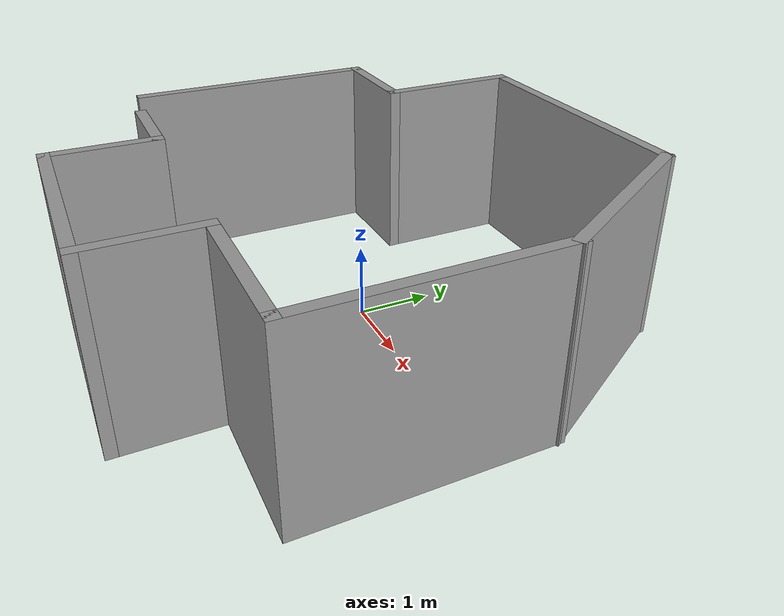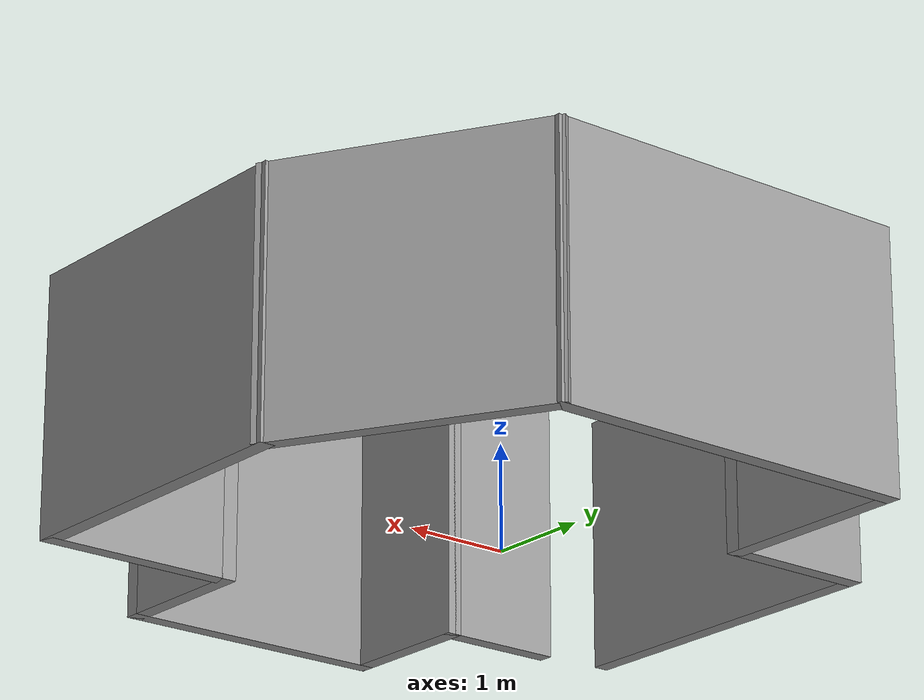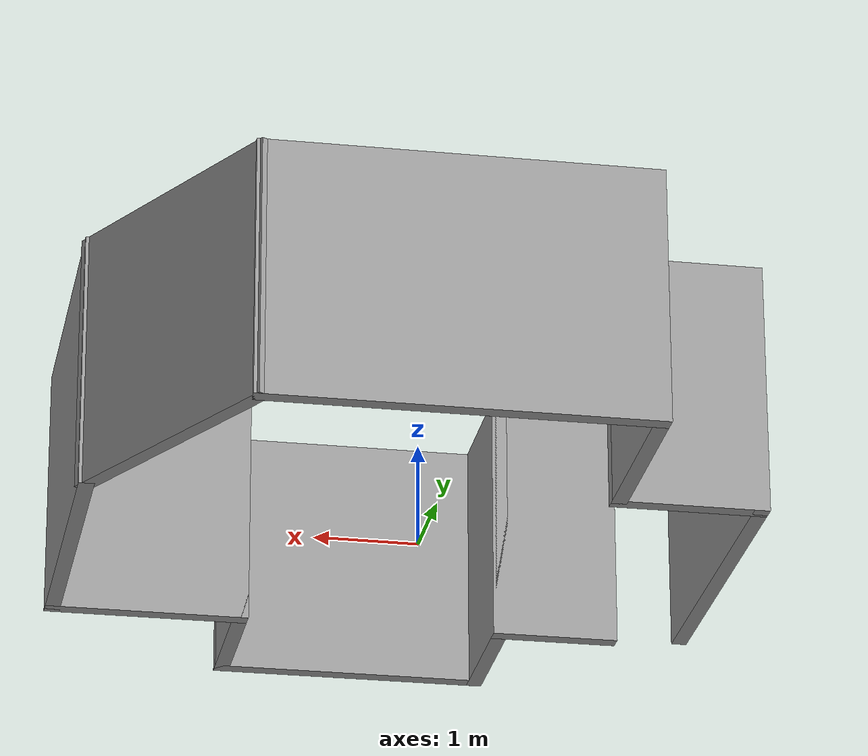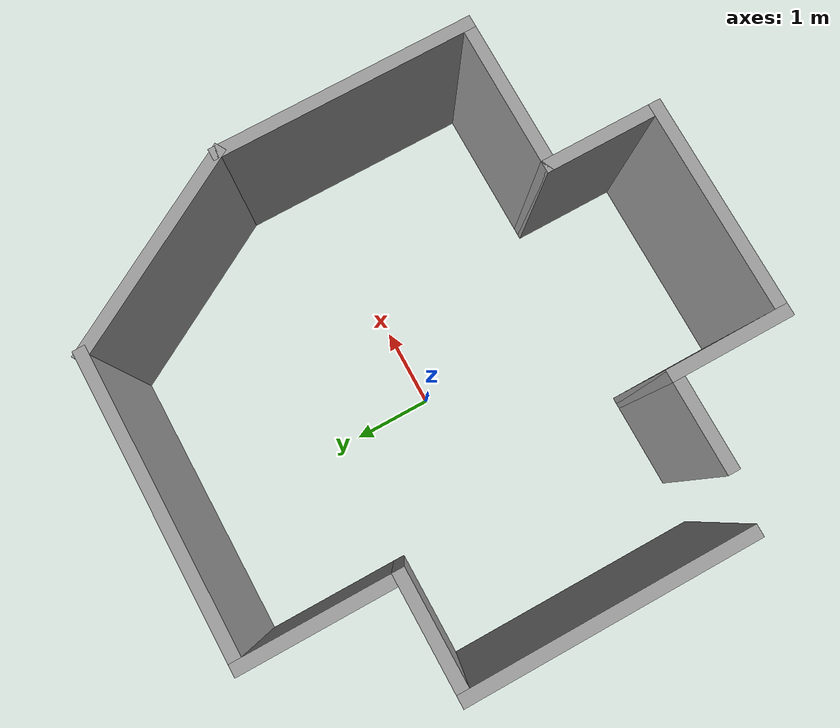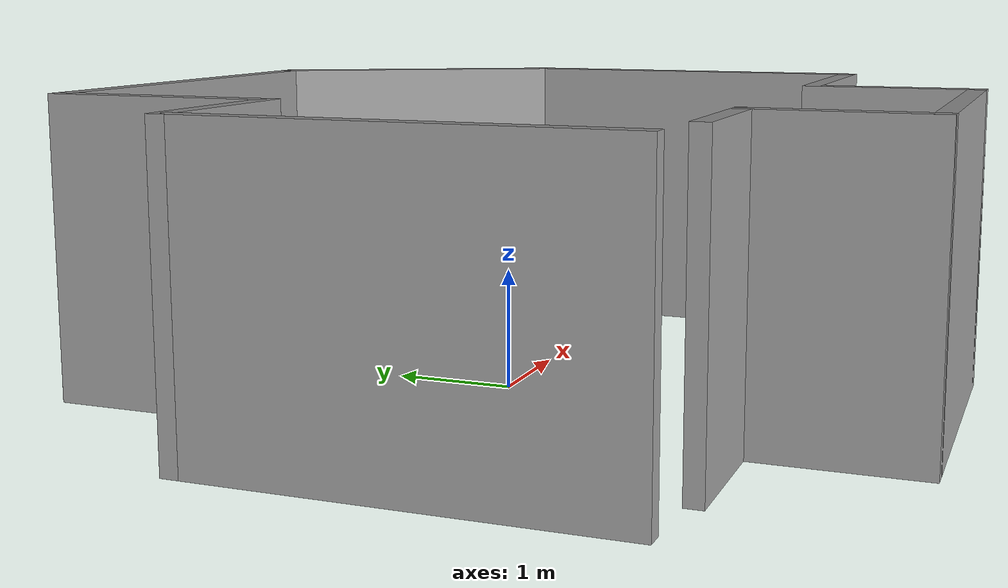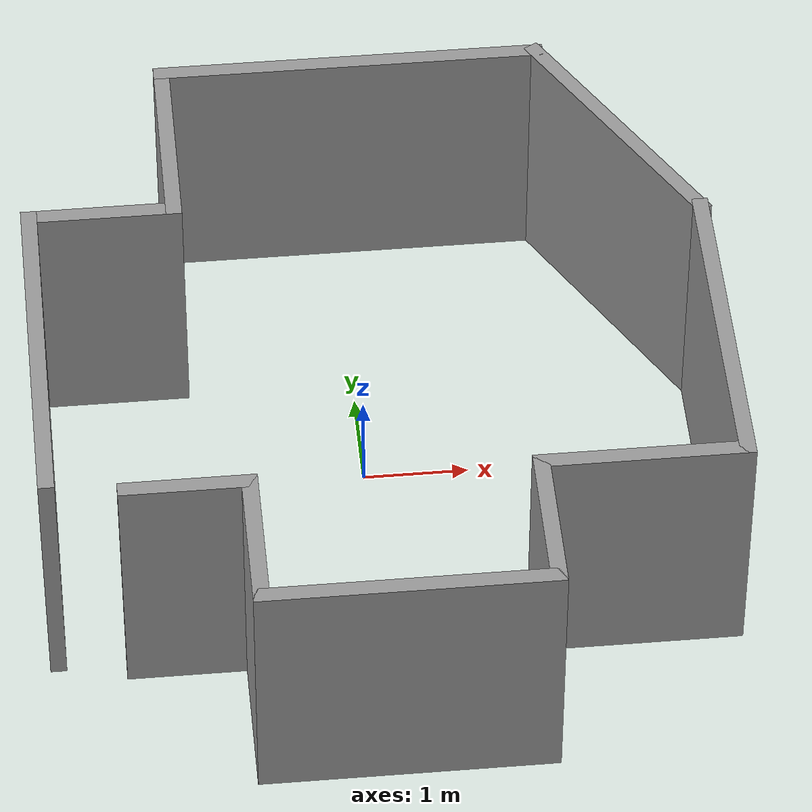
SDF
<?xml version='1.0'?>
<sdf version='1.6'>
  <model name='simple_arena'>
    <pose frame=''>0.129312 -0.214099 0 0 -0 0</pose>
    <link name='Wall_1'>
      <collision name='Wall_1_Collision'>
        <geometry>
          <box>
            <size>1.25 0.15 2.5</size>
          </box>
        </geometry>
        <pose frame=''>0 0 1.25 0 -0 0</pose>
      </collision>
      <visual name='Wall_1_Visual'>
        <pose frame=''>0 0 1.25 0 -0 0</pose>
        <geometry>
          <box>
            <size>1.25 0.15 2.5</size>
          </box>
        </geometry>
        <material>
          <script>
            <uri>file://media/materials/scripts/gazebo.material</uri>
            <name>Gazebo/Grey</name>
          </script>
          <ambient>1 1 1 1</ambient>
        </material>
        <meta>
          <layer>0</layer>
        </meta>
      </visual>
      <pose frame=''>-1.88873 -2.01456 0 0 -0 0</pose>
    </link>
    <link name='Wall_10'>
      <collision name='Wall_10_Collision'>
        <geometry>
          <box>
            <size>1.5 0.15 2.5</size>
          </box>
        </geometry>
        <pose frame=''>0 0 1.25 0 -0 0</pose>
      </collision>
      <visual name='Wall_10_Visual'>
        <pose frame=''>0 0 1.25 0 -0 0</pose>
        <geometry>
          <box>
            <size>1.5 0.15 2.5</size>
          </box>
        </geometry>
        <material>
          <script>
            <uri>file://media/materials/scripts/gazebo.material</uri>
            <name>Gazebo/Grey</name>
          </script>
          <ambient>1 1 1 1</ambient>
        </material>
        <meta>
          <layer>0</layer>
        </meta>
      </visual>
      <pose frame=''>-2.46373 1.48711 0 0 -0 3.14159</pose>
    </link>
    <link name='Wall_11'>
      <collision name='Wall_11_Collision'>
        <geometry>
          <box>
            <size>3.5 0.15 2.5</size>
          </box>
        </geometry>
        <pose frame=''>0 0 1.25 0 -0 0</pose>
      </collision>
      <visual name='Wall_11_Visual'>
        <pose frame=''>0 0 1.25 0 -0 0</pose>
        <geometry>
          <box>
            <size>3.5 0.15 2.5</size>
          </box>
        </geometry>
        <material>
          <script>
            <uri>file://media/materials/scripts/gazebo.material</uri>
            <name>Gazebo/Grey</name>
          </script>
          <ambient>1 1 1 1</ambient>
        </material>
        <meta>
          <layer>0</layer>
        </meta>
      </visual>
      <pose frame=''>-3.13873 -0.187893 0 0 -0 -1.5708</pose>
    </link>
    <link name='Wall_2'>
      <collision name='Wall_2_Collision'>
        <geometry>
          <box>
            <size>1.5 0.15 2.5</size>
          </box>
        </geometry>
        <pose frame=''>0 0 1.25 0 -0 0</pose>
      </collision>
      <visual name='Wall_2_Visual'>
        <pose frame=''>0 0 1.25 0 -0 0</pose>
        <geometry>
          <box>
            <size>1.5 0.15 2.5</size>
          </box>
        </geometry>
        <material>
          <script>
            <uri>file://media/materials/scripts/gazebo.material</uri>
            <name>Gazebo/Grey</name>
          </script>
          <ambient>1 1 1 1</ambient>
        </material>
        <meta>
          <layer>0</layer>
        </meta>
      </visual>
      <pose frame=''>-1.33873 -2.68956 0 0 -0 -1.5708</pose>
    </link>
    <link name='Wall_3'>
      <collision name='Wall_3_Collision'>
        <geometry>
          <box>
            <size>2.75 0.15 2.5</size>
          </box>
        </geometry>
        <pose frame=''>0 0 1.25 0 -0 0</pose>
      </collision>
      <visual name='Wall_3_Visual'>
        <pose frame=''>0 0 1.25 0 -0 0</pose>
        <geometry>
          <box>
            <size>2.75 0.15 2.5</size>
          </box>
        </geometry>
        <material>
          <script>
            <uri>file://media/materials/scripts/gazebo.material</uri>
            <name>Gazebo/Grey</name>
          </script>
          <ambient>1 1 1 1</ambient>
        </material>
        <meta>
          <layer>0</layer>
        </meta>
      </visual>
      <pose frame=''>-0.038726 -3.36456 0 0 -0 0</pose>
    </link>
    <link name='Wall_4'>
      <collision name='Wall_4_Collision'>
        <geometry>
          <box>
            <size>1.5 0.15 2.5</size>
          </box>
        </geometry>
        <pose frame=''>0 0 1.25 0 -0 0</pose>
      </collision>
      <visual name='Wall_4_Visual'>
        <pose frame=''>0 0 1.25 0 -0 0</pose>
        <geometry>
          <box>
            <size>1.5 0.15 2.5</size>
          </box>
        </geometry>
        <material>
          <script>
            <uri>file://media/materials/scripts/gazebo.material</uri>
            <name>Gazebo/Grey</name>
          </script>
          <ambient>1 1 1 1</ambient>
        </material>
        <meta>
          <layer>0</layer>
        </meta>
      </visual>
      <pose frame=''>1.26127 -2.68956 0 0 -0 1.5708</pose>
    </link>
    <link name='Wall_5'>
      <collision name='Wall_5_Collision'>
        <geometry>
          <box>
            <size>2 0.15 2.5</size>
          </box>
        </geometry>
        <pose frame=''>0 0 1.25 0 -0 0</pose>
      </collision>
      <visual name='Wall_5_Visual'>
        <pose frame=''>0 0 1.25 0 -0 0</pose>
        <geometry>
          <box>
            <size>2 0.15 2.5</size>
          </box>
        </geometry>
        <material>
          <script>
            <uri>file://media/materials/scripts/gazebo.material</uri>
            <name>Gazebo/Grey</name>
          </script>
          <ambient>1 1 1 1</ambient>
        </material>
        <meta>
          <layer>0</layer>
        </meta>
      </visual>
      <pose frame=''>2.18627 -2.01456 0 0 -0 0</pose>
    </link>
    <link name='Wall_6'>
      <collision name='Wall_6_Collision'>
        <geometry>
          <box>
            <size>3.25 0.15 2.5</size>
          </box>
        </geometry>
        <pose frame=''>0 0 1.25 0 -0 0</pose>
      </collision>
      <visual name='Wall_6_Visual'>
        <pose frame=''>0 0 1.25 0 -0 0</pose>
        <geometry>
          <box>
            <size>3.25 0.15 2.5</size>
          </box>
        </geometry>
        <material>
          <script>
            <uri>file://media/materials/scripts/gazebo.material</uri>
            <name>Gazebo/Grey</name>
          </script>
          <ambient>1 1 1 1</ambient>
        </material>
        <meta>
          <layer>0</layer>
        </meta>
      </visual>
      <pose frame=''>3.11127 -0.464559 0 0 -0 1.5708</pose>
    </link>
    <link name='Wall_7'>
      <collision name='Wall_7_Collision'>
        <geometry>
          <box>
            <size>2.75 0.15 2.5</size>
          </box>
        </geometry>
        <pose frame=''>0 0 1.25 0 -0 0</pose>
      </collision>
      <visual name='Wall_7_Visual'>
        <pose frame=''>0 0 1.25 0 -0 0</pose>
        <geometry>
          <box>
            <size>2.75 0.15 2.5</size>
          </box>
        </geometry>
        <material>
          <script>
            <uri>file://media/materials/scripts/gazebo.material</uri>
            <name>Gazebo/Grey</name>
          </script>
          <ambient>1 1 1 1</ambient>
        </material>
        <meta>
          <layer>0</layer>
        </meta>
      </visual>
      <pose frame=''>2.46127 2.21127 0 0 -0 2.0944</pose>
    </link>
    <link name='Wall_8'>
      <collision name='Wall_8_Collision'>
        <geometry>
          <box>
            <size>3.75 0.15 2.5</size>
          </box>
        </geometry>
        <pose frame=''>0 0 1.25 0 -0 0</pose>
      </collision>
      <visual name='Wall_8_Visual'>
        <pose frame=''>0 0 1.25 0 -0 0</pose>
        <geometry>
          <box>
            <size>3.75 0.15 2.5</size>
          </box>
        </geometry>
        <material>
          <script>
            <uri>file://media/materials/scripts/gazebo.material</uri>
            <name>Gazebo/Grey</name>
          </script>
          <ambient>1 1 1 1</ambient>
        </material>
        <meta>
          <layer>0</layer>
        </meta>
      </visual>
      <pose frame=''>0.011274 3.33711 0 0 -0 3.14159</pose>
    </link>
    <link name='Wall_9'>
      <collision name='Wall_9_Collision'>
        <geometry>
          <box>
            <size>2 0.15 2.5</size>
          </box>
        </geometry>
        <pose frame=''>0 0 1.25 0 -0 0</pose>
      </collision>
      <visual name='Wall_9_Visual'>
        <pose frame=''>0 0 1.25 0 -0 0</pose>
        <geometry>
          <box>
            <size>2 0.15 2.5</size>
          </box>
        </geometry>
        <material>
          <script>
            <uri>file://media/materials/scripts/gazebo.material</uri>
            <name>Gazebo/Grey</name>
          </script>
          <ambient>1 1 1 1</ambient>
        </material>
        <meta>
          <layer>0</layer>
        </meta>
      </visual>
      <pose frame=''>-1.78873 2.41211 0 0 -0 -1.5708</pose>
    </link>
    <static>1</static>
  </model>
</sdf>
